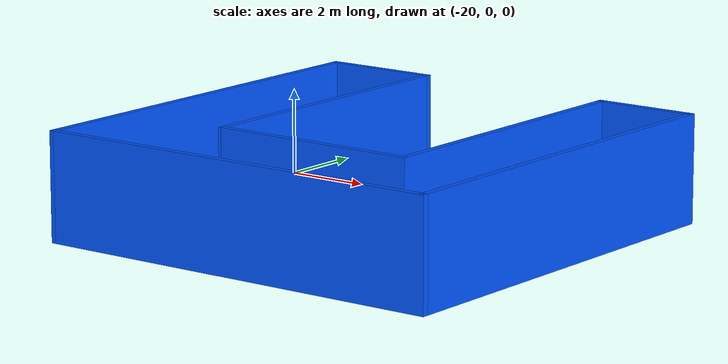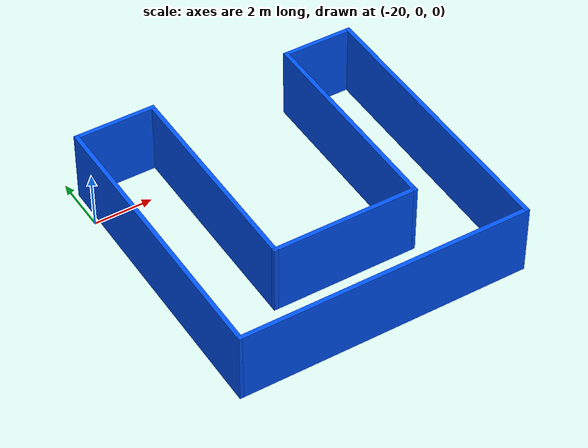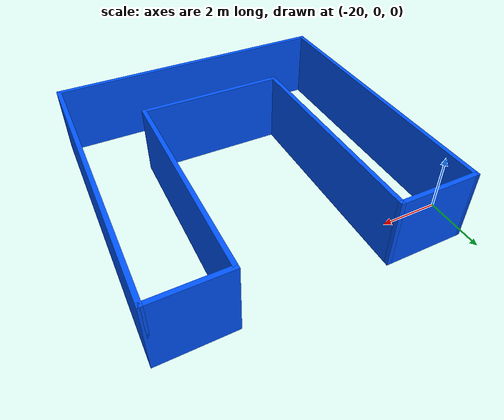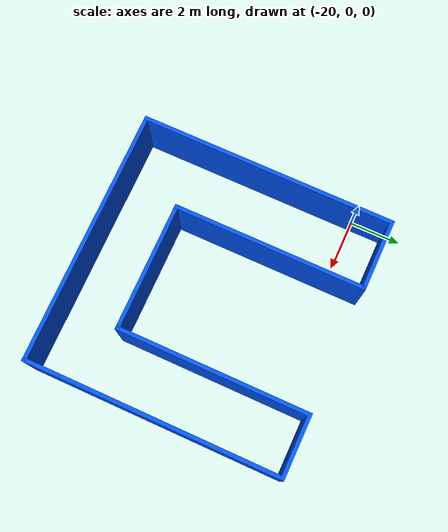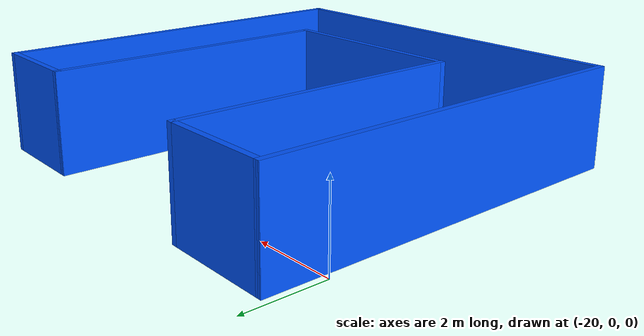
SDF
<?xml version='1.0'?>
<sdf version='1.6'>
  <model name='mybuilding'>
    <pose frame=''>-14.8098 -3.59245 0 0 -0 0</pose>
    <link name='Wall_22'>
      <collision name='Wall_22_Collision'>
        <geometry>
          <box>
            <size>5.0532 0.15 2.5</size>
          </box>
        </geometry>
        <pose frame=''>0 0 1.25 0 -0 0</pose>
      </collision>
      <visual name='Wall_22_Visual'>
        <pose frame=''>0 0 1.25 0 -0 0</pose>
        <geometry>
          <box>
            <size>5.0532 0.15 2.5</size>
          </box>
        </geometry>
        <material>
          <script>
            <uri>file://media/materials/scripts/gazebo.material</uri>
            <name>Gazebo/Grey</name>
          </script>
          <ambient>0 0.333333 1 1</ambient>
        </material>
        <meta>
          <layer>0</layer>
        </meta>
      </visual>
      <pose frame=''>0.155603 -2.4383 0 0 -0 0</pose>
    </link>
    <link name='Wall_23'>
      <collision name='Wall_23_Collision'>
        <geometry>
          <box>
            <size>7.5 0.15 2.5</size>
          </box>
        </geometry>
        <pose frame=''>0 0 1.25 0 -0 0</pose>
      </collision>
      <visual name='Wall_23_Visual'>
        <pose frame=''>0 0 1.25 0 -0 0</pose>
        <geometry>
          <box>
            <size>7.5 0.15 2.5</size>
          </box>
        </geometry>
        <material>
          <script>
            <uri>file://media/materials/scripts/gazebo.material</uri>
            <name>Gazebo/Grey</name>
          </script>
          <ambient>0 0.333333 1 1</ambient>
        </material>
        <meta>
          <layer>0</layer>
        </meta>
      </visual>
      <pose frame=''>2.6072 1.2367 0 0 -0 1.5708</pose>
    </link>
    <link name='Wall_24'>
      <collision name='Wall_24_Collision'>
        <geometry>
          <box>
            <size>2.5 0.15 2.5</size>
          </box>
        </geometry>
        <pose frame=''>0 0 1.25 0 -0 0</pose>
      </collision>
      <visual name='Wall_24_Visual'>
        <pose frame=''>0 0 1.25 0 -0 0</pose>
        <geometry>
          <box>
            <size>2.5 0.15 2.5</size>
          </box>
        </geometry>
        <material>
          <script>
            <uri>file://media/materials/scripts/gazebo.material</uri>
            <name>Gazebo/Grey</name>
          </script>
          <ambient>0 0.333333 1 1</ambient>
        </material>
        <meta>
          <layer>0</layer>
        </meta>
      </visual>
      <pose frame=''>3.7822 4.9117 0 0 -0 0</pose>
    </link>
    <link name='Wall_25'>
      <collision name='Wall_25_Collision'>
        <geometry>
          <box>
            <size>9.9468 0.15 2.5</size>
          </box>
        </geometry>
        <pose frame=''>0 0 1.25 0 -0 0</pose>
      </collision>
      <visual name='Wall_25_Visual'>
        <pose frame=''>0 0 1.25 0 -0 0</pose>
        <geometry>
          <box>
            <size>9.9468 0.15 2.5</size>
          </box>
        </geometry>
        <material>
          <script>
            <uri>file://media/materials/scripts/gazebo.material</uri>
            <name>Gazebo/Grey</name>
          </script>
          <ambient>0 0.333333 1 1</ambient>
        </material>
        <meta>
          <layer>0</layer>
        </meta>
      </visual>
      <pose frame=''>4.9572 0.0133 0 0 0 -1.5708</pose>
    </link>
    <link name='Wall_26'>
      <collision name='Wall_26_Collision'>
        <geometry>
          <box>
            <size>10.0306 0.15 2.5</size>
          </box>
        </geometry>
        <pose frame=''>0 0 1.25 0 -0 0</pose>
      </collision>
      <visual name='Wall_26_Visual'>
        <pose frame=''>0 0 1.25 0 -0 0</pose>
        <geometry>
          <box>
            <size>10.0306 0.15 2.5</size>
          </box>
        </geometry>
        <material>
          <script>
            <uri>file://media/materials/scripts/gazebo.material</uri>
            <name>Gazebo/Grey</name>
          </script>
          <ambient>0 0.333333 1 1</ambient>
        </material>
        <meta>
          <layer>0</layer>
        </meta>
      </visual>
      <pose frame=''>0.016908 -4.9117 0 0 -0 3.14159</pose>
    </link>
    <link name='Wall_28'>
      <collision name='Wall_28_Collision'>
        <geometry>
          <box>
            <size>9.9734 0.15 2.5</size>
          </box>
        </geometry>
        <pose frame=''>0 0 1.25 0 -0 0</pose>
      </collision>
      <visual name='Wall_28_Visual'>
        <pose frame=''>0 0 1.25 0 -0 0</pose>
        <geometry>
          <box>
            <size>9.9734 0.15 2.5</size>
          </box>
        </geometry>
        <material>
          <script>
            <uri>file://media/materials/scripts/gazebo.material</uri>
            <name>Gazebo/Grey</name>
          </script>
          <ambient>0 0.333333 1 1</ambient>
        </material>
        <meta>
          <layer>0</layer>
        </meta>
      </visual>
      <pose frame=''>-4.95558 0 0 0 -0 1.57112</pose>
    </link>
    <link name='Wall_33'>
      <collision name='Wall_33_Collision'>
        <geometry>
          <box>
            <size>7.5 0.15 2.5</size>
          </box>
        </geometry>
        <pose frame=''>0 0 1.25 0 -0 0</pose>
      </collision>
      <visual name='Wall_33_Visual'>
        <pose frame=''>0 0 1.25 0 -0 0</pose>
        <geometry>
          <box>
            <size>7.5 0.15 2.5</size>
          </box>
        </geometry>
        <material>
          <script>
            <uri>file://media/materials/scripts/gazebo.material</uri>
            <name>Gazebo/Grey</name>
          </script>
          <ambient>0 0.333333 1 1</ambient>
        </material>
        <meta>
          <layer>0</layer>
        </meta>
      </visual>
      <pose frame=''>-2.296 1.2367 0 0 -0 1.5708</pose>
    </link>
    <link name='Wall_39'>
      <collision name='Wall_39_Collision'>
        <geometry>
          <box>
            <size>2.78059 0.15 2.5</size>
          </box>
        </geometry>
        <pose frame=''>0 0 1.25 0 -0 0</pose>
      </collision>
      <visual name='Wall_39_Visual'>
        <pose frame=''>0 0 1.25 0 -0 0</pose>
        <geometry>
          <box>
            <size>2.78059 0.15 2.5</size>
          </box>
        </geometry>
        <material>
          <script>
            <uri>file://media/materials/scripts/gazebo.material</uri>
            <name>Gazebo/Grey</name>
          </script>
          <ambient>0 0.333333 1 1</ambient>
        </material>
        <meta>
          <layer>0</layer>
        </meta>
      </visual>
      <pose frame=''>-3.61129 4.9117 0 0 -0 3.14159</pose>
    </link>
    <static>1</static>
  </model>
</sdf>
